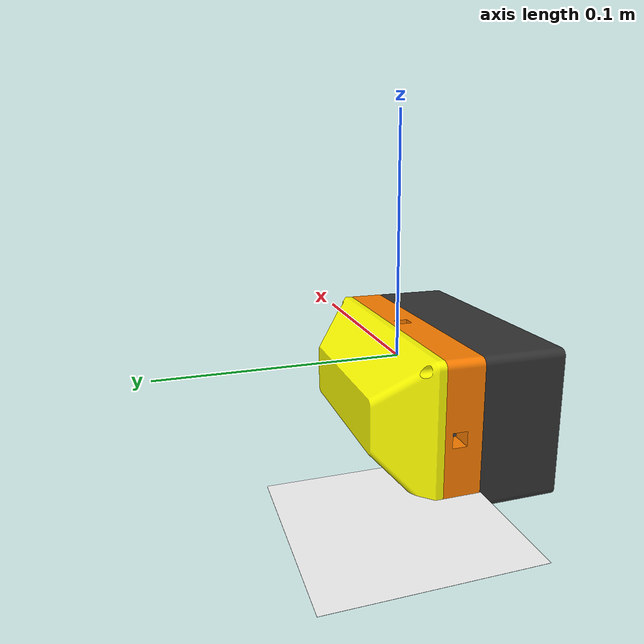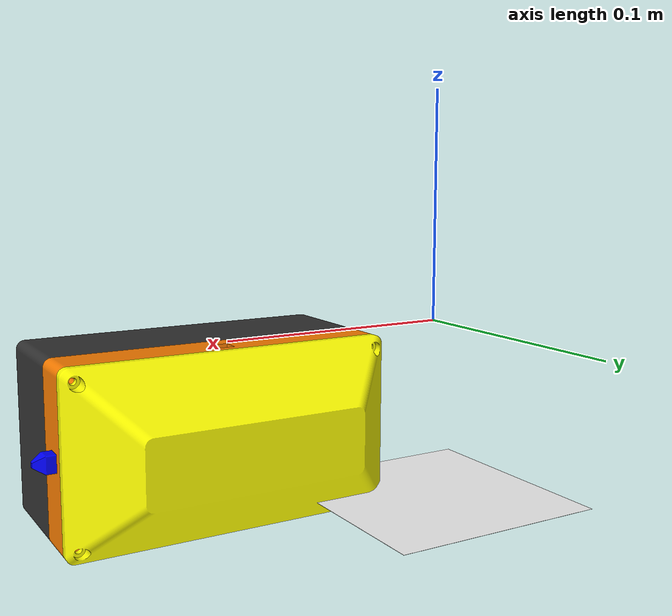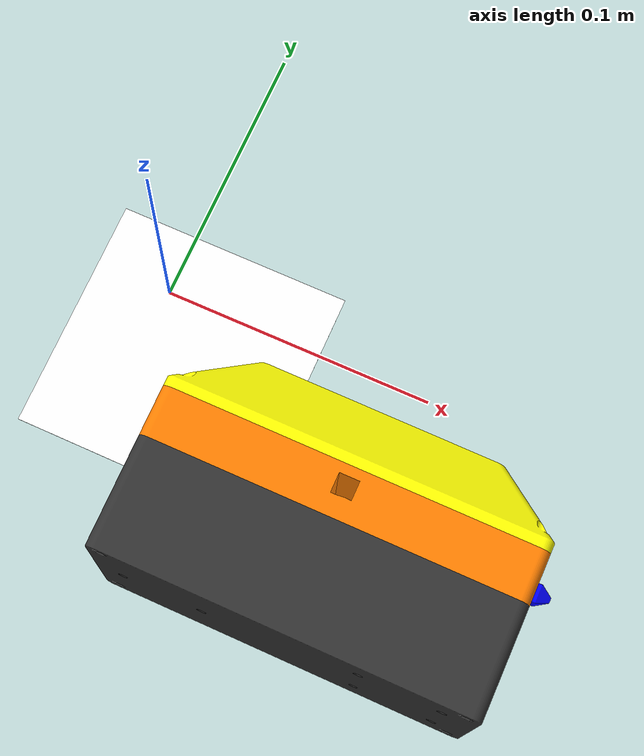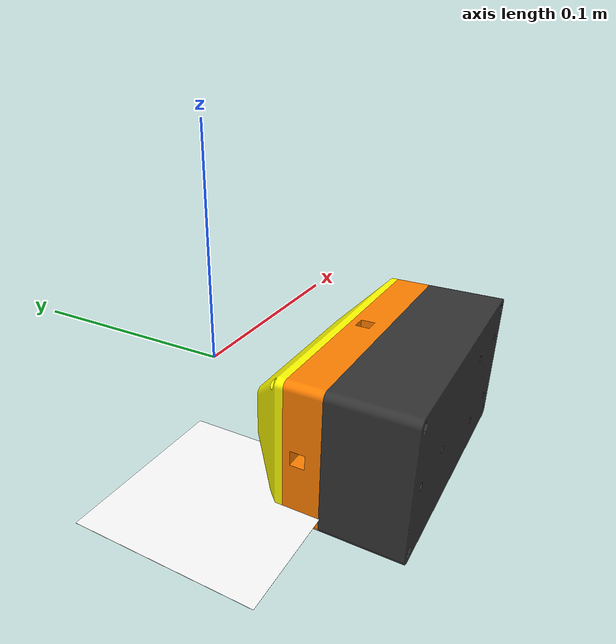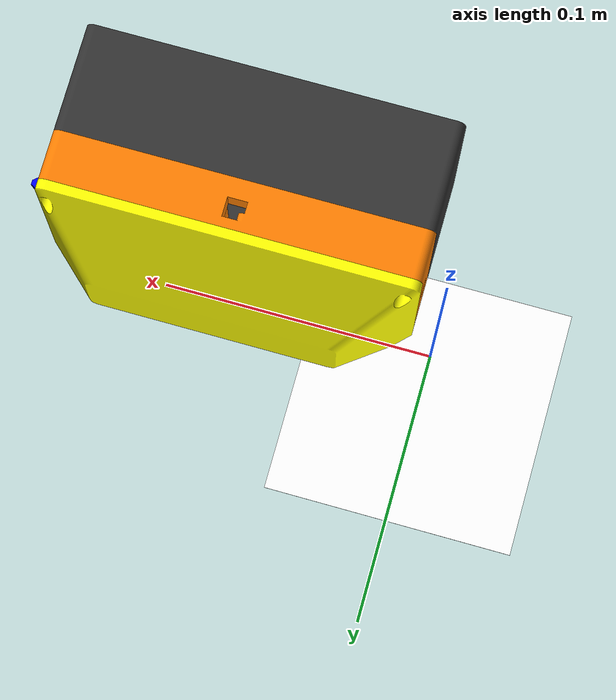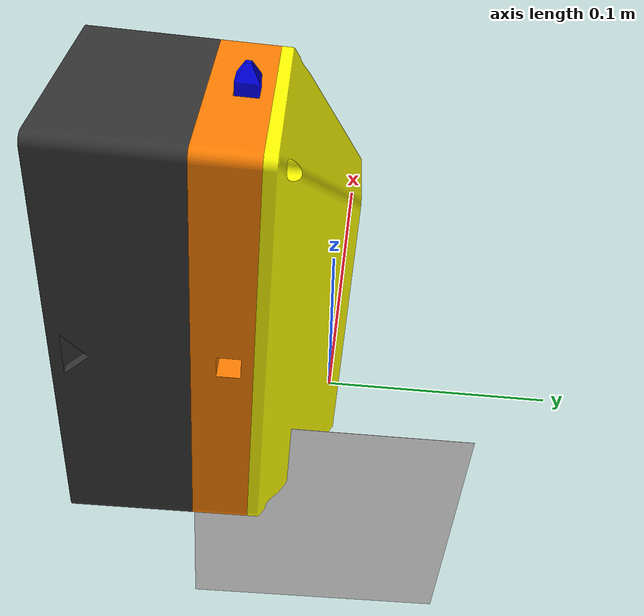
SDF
<?xml version="1.0" ?>
<sdf version="1.9">
  <model name="landing_payload">
    <static>false</static>
    <link name="base_link">
      <pose>0 0 0 3.14159 0 0</pose>

      <inertial>
        <mass>2.5</mass>
        <inertia>
          <ixx>0.05</ixx><iyy>0.05</iyy><izz>0.05</izz>
        </inertia>
      </inertial>

      <collision name="simple_box_collision">
        <geometry>
          <box><size>0.2 0.2 0.15</size></box>
        </geometry>
      </collision>

      <visual name="box_visual">
        <geometry>
          <mesh>
            <uri>model://landing_payload/meshes/system - payload box-1.STL</uri>
            <scale>0.001 0.001 0.001</scale>
          </mesh>
        </geometry>
        <material>
          <ambient>1.0 0.5 0.0 1</ambient>
          <diffuse>1.0 0.5 0.0 1</diffuse>
        </material>
      </visual>

      <visual name="bottom_visual">
        <geometry>
          <mesh>
            <uri>model://landing_payload/meshes/system - Bottom-1.STL</uri>
            <scale>0.001 0.001 0.001</scale>
          </mesh>
        </geometry>
        <material>
          <ambient>0.2 0.2 0.2 1</ambient>
          <diffuse>0.2 0.2 0.2 1</diffuse>
        </material>
      </visual>

      <visual name="cone_visual">
        <geometry>
          <mesh>
            <uri>model://landing_payload/meshes/system - Cone Top-1.STL</uri>
            <scale>0.001 0.001 0.001</scale>
          </mesh>
        </geometry>
        <material>
          <ambient>1.0 1.0 0.0 1</ambient>
          <diffuse>1.0 1.0 0.0 1</diffuse>
        </material>
      </visual>

      <visual name="pins_visuall">
        <geometry>
          <mesh>
            <uri>model://landing_payload/meshes/system - Pin - Long-1.STL</uri>
            <scale>0.001 0.001 0.001</scale>
          </mesh>
        </geometry>
        <material>
          <ambient>0.0 0.0 1.0 1</ambient>
          <diffuse>0.0 0.0 1.0 1</diffuse>
        </material>
      </visual>
      <visual name="tag_surface">
        <pose>0 0 0.08 0 0 0</pose> <geometry>
          <plane>
            <normal>0 0 1</normal>
            <size>0.1 0.1</size> </plane>
        </geometry>
        <material>
          <ambient>1 1 1 1</ambient>
          <diffuse>1 1 1 1</diffuse>
        </material>
      </visual>
    </link>
  </model>
</sdf>
